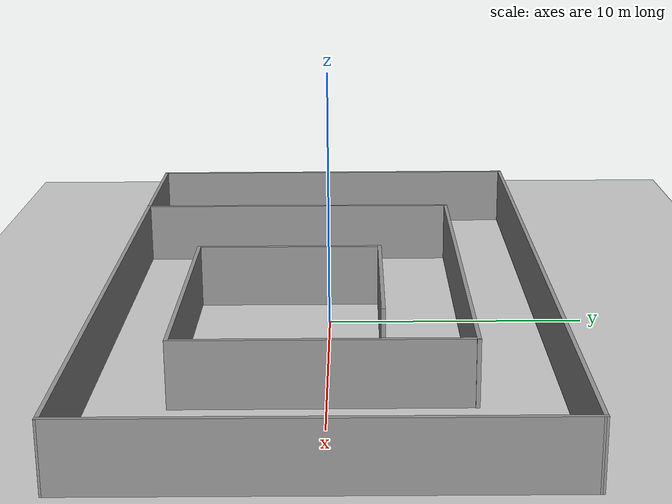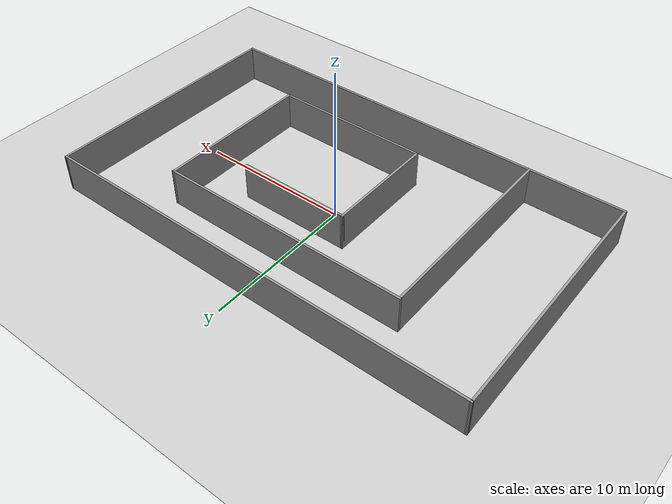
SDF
<sdf version="1.7">
 <world name="default">
  <light name="sun" type="directional">
   <pose>0 0 10 0 -0 0</pose>
   <diffuse>0.8 0.8 0.8 1</diffuse>
   <specular>0.2 0.2 0.2 1</specular>
   <attenuation>
    <range>1000</range>
    <constant>0.9</constant>
    <linear>0.01</linear>
    <quadratic>0.001</quadratic>
   </attenuation>
   <direction>-0.5 0.1 -0.9</direction>
   <spot><inner_angle>0</inner_angle><outer_angle>0</outer_angle><falloff>0</falloff></spot>
  </light>
  <model name="ground_plane">
   <static>1</static>
   <link name="link">
    <collision name="collision">
     <geometry><plane><normal>0 0 1</normal><size>100 100</size></plane></geometry>
     <surface>
      <contact><collide_bitmask>65535</collide_bitmask></contact>
      <friction><ode><mu>100</mu><mu2>50</mu2></ode></friction>
     </surface>
    </collision>
    <visual name="visual">
     <cast_shadows>0</cast_shadows>
     <geometry><plane><normal>0 0 1</normal><size>100 100</size></plane></geometry>
     <material>
      <script><uri>file://media/materials/scripts/gazebo.material</uri><name>Gazebo/Grey</name></script>
     </material>
    </visual>
   </link>
  </model>
  <gravity>0 0 -9.8</gravity>
  <magnetic_field>6e-06 2.3e-05 -4.2e-05</magnetic_field>
  <atmosphere type="adiabatic"/>
  <physics type="ode">
   <max_step_size>0.001</max_step_size>
   <real_time_factor>1</real_time_factor>
   <real_time_update_rate>1000</real_time_update_rate>
  </physics>
  <scene><ambient>0.4 0.4 0.4 1</ambient><background>0.7 0.7 0.7 1</background><shadows>1</shadows></scene>
  <spherical_coordinates>
   <surface_model>EARTH_WGS84</surface_model>
   <latitude_deg>0</latitude_deg>
   <longitude_deg>0</longitude_deg>
   <elevation>0</elevation>
   <heading_deg>0</heading_deg>
  </spherical_coordinates>
  <model name="actor30_collision">
   <pose>-13 6.9001 -4.50699 0 -0 1.5708</pose>
   <link name="body">
    <pose>0 0 0.85 0 -0 0</pose>
    <visual name="visual">
     <geometry><cylinder><radius>0.15</radius><length>1.7</length></cylinder></geometry>
     <transparency>1</transparency>
     <cast_shadows>0</cast_shadows>
    </visual>
    <collision name="collision">
     <geometry><cylinder><radius>0.15</radius><length>1.7</length></cylinder></geometry>
     <surface>
      <friction>
       <ode><mu>1</mu><mu2>1</mu2><fdir1>0 0 0</fdir1><slip1>0</slip1><slip2>0</slip2></ode>
       <torsional>
        <coefficient>1</coefficient>
        <patch_radius>0</patch_radius>
        <surface_radius>0</surface_radius>
        <use_patch_radius>1</use_patch_radius>
        <ode><slip>0</slip></ode>
       </torsional>
      </friction>
      <bounce><restitution_coefficient>0</restitution_coefficient><threshold>1e+06</threshold></bounce>
      <contact>
       <collide_without_contact>0</collide_without_contact>
       <collide_without_contact_bitmask>1</collide_without_contact_bitmask>
       <collide_bitmask>1</collide_bitmask>
       <ode>
        <soft_cfm>0</soft_cfm>
        <soft_erp>0.2</soft_erp>
        <kp>1e+13</kp>
        <kd>1</kd>
        <max_vel>0.01</max_vel>
        <min_depth>0</min_depth>
       </ode>
       <bullet>
        <split_impulse>1</split_impulse>
        <split_impulse_penetration_threshold>-0.01</split_impulse_penetration_threshold>
        <soft_cfm>0</soft_cfm>
        <soft_erp>0.2</soft_erp>
        <kp>1e+13</kp>
        <kd>1</kd>
       </bullet>
      </contact>
     </surface>
    </collision>
    <inertial>
     <inertia><ixx>1</ixx><ixy>0</ixy><ixz>0</ixz><iyy>1</iyy><iyz>0</iyz><izz>1</izz></inertia>
     <mass>1</mass>
    </inertial>
   </link>
   <static>0</static>
   <plugin name="actor30_collision_follower" filename="libgazebo_actor_pose_follower.so">
    <target>actor30</target>
    <offset>0 0 0 0 0 0</offset>
   </plugin>
  </model>
  <model name="actor31_collision">
   <pose>-10 5.9001 -4.50698 0 -0 1.5708</pose>
   <link name="body">
    <pose>0 0 0.85 0 -0 0</pose>
    <visual name="visual">
     <geometry><cylinder><radius>0.15</radius><length>1.7</length></cylinder></geometry>
     <transparency>1</transparency>
     <cast_shadows>0</cast_shadows>
    </visual>
    <collision name="collision">
     <geometry><cylinder><radius>0.15</radius><length>1.7</length></cylinder></geometry>
     <surface>
      <friction>
       <ode><mu>1</mu><mu2>1</mu2><fdir1>0 0 0</fdir1><slip1>0</slip1><slip2>0</slip2></ode>
       <torsional>
        <coefficient>1</coefficient>
        <patch_radius>0</patch_radius>
        <surface_radius>0</surface_radius>
        <use_patch_radius>1</use_patch_radius>
        <ode><slip>0</slip></ode>
       </torsional>
      </friction>
      <bounce><restitution_coefficient>0</restitution_coefficient><threshold>1e+06</threshold></bounce>
      <contact>
       <collide_without_contact>0</collide_without_contact>
       <collide_without_contact_bitmask>1</collide_without_contact_bitmask>
       <collide_bitmask>1</collide_bitmask>
       <ode>
        <soft_cfm>0</soft_cfm>
        <soft_erp>0.2</soft_erp>
        <kp>1e+13</kp>
        <kd>1</kd>
        <max_vel>0.01</max_vel>
        <min_depth>0</min_depth>
       </ode>
       <bullet>
        <split_impulse>1</split_impulse>
        <split_impulse_penetration_threshold>-0.01</split_impulse_penetration_threshold>
        <soft_cfm>0</soft_cfm>
        <soft_erp>0.2</soft_erp>
        <kp>1e+13</kp>
        <kd>1</kd>
       </bullet>
      </contact>
     </surface>
    </collision>
    <inertial>
     <inertia><ixx>1</ixx><ixy>0</ixy><ixz>0</ixz><iyy>1</iyy><iyz>0</iyz><izz>1</izz></inertia>
     <mass>1</mass>
    </inertial>
   </link>
   <static>0</static>
   <plugin name="actor31_collision_follower" filename="libgazebo_actor_pose_follower.so">
    <target>actor31</target>
    <offset>0 0 0 0 0 0</offset>
   </plugin>
  </model>
  <model name="actor32_collision">
   <pose>9.9001 6 -4.50696 0 -0 0</pose>
   <link name="body">
    <pose>0 0 0.85 0 -0 0</pose>
    <visual name="visual">
     <geometry><cylinder><radius>0.15</radius><length>1.7</length></cylinder></geometry>
     <transparency>1</transparency>
     <cast_shadows>0</cast_shadows>
    </visual>
    <collision name="collision">
     <geometry><cylinder><radius>0.15</radius><length>1.7</length></cylinder></geometry>
     <surface>
      <friction>
       <ode><mu>1</mu><mu2>1</mu2><fdir1>0 0 0</fdir1><slip1>0</slip1><slip2>0</slip2></ode>
       <torsional>
        <coefficient>1</coefficient>
        <patch_radius>0</patch_radius>
        <surface_radius>0</surface_radius>
        <use_patch_radius>1</use_patch_radius>
        <ode><slip>0</slip></ode>
       </torsional>
      </friction>
      <bounce><restitution_coefficient>0</restitution_coefficient><threshold>1e+06</threshold></bounce>
      <contact>
       <collide_without_contact>0</collide_without_contact>
       <collide_without_contact_bitmask>1</collide_without_contact_bitmask>
       <collide_bitmask>1</collide_bitmask>
       <ode>
        <soft_cfm>0</soft_cfm>
        <soft_erp>0.2</soft_erp>
        <kp>1e+13</kp>
        <kd>1</kd>
        <max_vel>0.01</max_vel>
        <min_depth>0</min_depth>
       </ode>
       <bullet>
        <split_impulse>1</split_impulse>
        <split_impulse_penetration_threshold>-0.01</split_impulse_penetration_threshold>
        <soft_cfm>0</soft_cfm>
        <soft_erp>0.2</soft_erp>
        <kp>1e+13</kp>
        <kd>1</kd>
       </bullet>
      </contact>
     </surface>
    </collision>
    <inertial>
     <inertia><ixx>1</ixx><ixy>0</ixy><ixz>0</ixz><iyy>1</iyy><iyz>0</iyz><izz>1</izz></inertia>
     <mass>1</mass>
    </inertial>
   </link>
   <static>0</static>
   <plugin name="actor32_collision_follower" filename="libgazebo_actor_pose_follower.so">
    <target>actor32</target>
    <offset>0 0 0 0 0 0</offset>
   </plugin>
  </model>
  <model name="actor33_collision">
   <pose>7.9002 7.5 -4.50695 0 -0 0</pose>
   <link name="body">
    <pose>0 0 0.85 0 -0 0</pose>
    <visual name="visual">
     <geometry><cylinder><radius>0.15</radius><length>1.7</length></cylinder></geometry>
     <transparency>1</transparency>
     <cast_shadows>0</cast_shadows>
    </visual>
    <collision name="collision">
     <geometry><cylinder><radius>0.15</radius><length>1.7</length></cylinder></geometry>
     <surface>
      <friction>
       <ode><mu>1</mu><mu2>1</mu2><fdir1>0 0 0</fdir1><slip1>0</slip1><slip2>0</slip2></ode>
       <torsional>
        <coefficient>1</coefficient>
        <patch_radius>0</patch_radius>
        <surface_radius>0</surface_radius>
        <use_patch_radius>1</use_patch_radius>
        <ode><slip>0</slip></ode>
       </torsional>
      </friction>
      <bounce><restitution_coefficient>0</restitution_coefficient><threshold>1e+06</threshold></bounce>
      <contact>
       <collide_without_contact>0</collide_without_contact>
       <collide_without_contact_bitmask>1</collide_without_contact_bitmask>
       <collide_bitmask>1</collide_bitmask>
       <ode>
        <soft_cfm>0</soft_cfm>
        <soft_erp>0.2</soft_erp>
        <kp>1e+13</kp>
        <kd>1</kd>
        <max_vel>0.01</max_vel>
        <min_depth>0</min_depth>
       </ode>
       <bullet>
        <split_impulse>1</split_impulse>
        <split_impulse_penetration_threshold>-0.01</split_impulse_penetration_threshold>
        <soft_cfm>0</soft_cfm>
        <soft_erp>0.2</soft_erp>
        <kp>1e+13</kp>
        <kd>1</kd>
       </bullet>
      </contact>
     </surface>
    </collision>
    <inertial>
     <inertia><ixx>1</ixx><ixy>0</ixy><ixz>0</ixz><iyy>1</iyy><iyz>0</iyz><izz>1</izz></inertia>
     <mass>1</mass>
    </inertial>
   </link>
   <static>0</static>
   <plugin name="actor33_collision_follower" filename="libgazebo_actor_pose_follower.so">
    <target>actor33</target>
    <offset>0 0 0 0 0 0</offset>
   </plugin>
  </model>
  <model name="ICR2026_wall">
   <link name="Wall_0">
    <collision name="Wall_0_Collision">
     <geometry><box><size>7.5 0.15 2.5</size></box></geometry>
     <pose>0 0 1.25 0 -0 0</pose>
    </collision>
    <visual name="Wall_0_Visual">
     <pose>0 0 1.25 0 -0 0</pose>
     <geometry><box><size>7.5 0.15 2.5</size></box></geometry>
     <material>
      <script><uri>file://media/materials/scripts/gazebo.material</uri><name>Gazebo/Grey</name></script>
      <ambient>1 1 1 1</ambient>
     </material>
     <meta><layer>0</layer></meta>
    </visual>
    <pose>1.58092 2.01108 0 0 -0 3.13889</pose>
   </link>
   <link name="Wall_1">
    <collision name="Wall_1_Collision">
     <geometry><box><size>7.5 0.15 2.5</size></box></geometry>
     <pose>0 0 1.25 0 -0 0</pose>
    </collision>
    <visual name="Wall_1_Visual">
     <pose>0 0 1.25 0 -0 0</pose>
     <geometry><box><size>7.5 0.15 2.5</size></box></geometry>
     <material>
      <script><uri>file://media/materials/scripts/gazebo.material</uri><name>Gazebo/Grey</name></script>
      <ambient>1 1 1 1</ambient>
     </material>
     <meta><layer>0</layer></meta>
    </visual>
    <pose>-2.09423 -1.65397 0 0 -0 -1.5708</pose>
   </link>
   <link name="Wall_10">
    <collision name="Wall_10_Collision">
     <geometry><box><size>6.25 0.15 2.5</size></box></geometry>
     <pose>0 0 1.25 0 -0 0</pose>
    </collision>
    <visual name="Wall_10_Visual">
     <pose>0 0 1.25 0 -0 0</pose>
     <geometry><box><size>6.25 0.15 2.5</size></box></geometry>
     <material>
      <script><uri>file://media/materials/scripts/gazebo.material</uri><name>Gazebo/Grey</name></script>
      <ambient>1 1 1 1</ambient>
     </material>
     <meta><layer>0</layer></meta>
    </visual>
    <pose>-11.3058 -8.25297 0 0 -0 0</pose>
   </link>
   <link name="Wall_2">
    <collision name="Wall_2_Collision">
     <geometry><box><size>10.5 0.15 2.5</size></box></geometry>
     <pose>0 0 1.25 0 -0 0</pose>
    </collision>
    <visual name="Wall_2_Visual">
     <pose>0 0 1.25 0 -0 0</pose>
     <geometry><box><size>10.5 0.15 2.5</size></box></geometry>
     <material>
      <script><uri>file://media/materials/scripts/gazebo.material</uri><name>Gazebo/Grey</name></script>
      <ambient>1 1 1 1</ambient>
     </material>
     <meta><layer>0</layer></meta>
    </visual>
    <pose>3.08077 -5.32897 0 0 -0 0</pose>
   </link>
   <link name="Wall_3">
    <collision name="Wall_3_Collision">
     <geometry><box><size>10.6166 0.15 2.5</size></box></geometry>
     <pose>0 0 1.25 0 -0 0</pose>
    </collision>
    <visual name="Wall_3_Visual">
     <pose>0 0 1.25 0 -0 0</pose>
     <geometry><box><size>10.6166 0.15 2.5</size></box></geometry>
     <material>
      <script><uri>file://media/materials/scripts/gazebo.material</uri><name>Gazebo/Grey</name></script>
      <ambient>1 1 1 1</ambient>
     </material>
     <meta><layer>0</layer></meta>
    </visual>
    <pose>8.25592 -0.095743 0 0 -0 1.57077</pose>
   </link>
   <link name="Wall_4">
    <collision name="Wall_4_Collision">
     <geometry><box><size>16.6925 0.15 2.5</size></box></geometry>
     <pose>0 0 1.25 0 -0 0</pose>
    </collision>
    <visual name="Wall_4_Visual">
     <pose>0 0 1.25 0 -0 0</pose>
     <geometry><box><size>16.6925 0.15 2.5</size></box></geometry>
     <material>
      <script><uri>file://media/materials/scripts/gazebo.material</uri><name>Gazebo/Grey</name></script>
      <ambient>1 1 1 1</ambient>
     </material>
     <meta><layer>0</layer></meta>
    </visual>
    <pose>0.015448 5.13749 0 0 -0 3.14159</pose>
   </link>
   <link name="Wall_5">
    <collision name="Wall_5_Collision">
     <geometry><box><size>13.5 0.15 2.5</size></box></geometry>
     <pose>0 0 1.25 0 -0 0</pose>
    </collision>
    <visual name="Wall_5_Visual">
     <pose>0 0 1.25 0 -0 0</pose>
     <geometry><box><size>13.5 0.15 2.5</size></box></geometry>
     <material>
      <script><uri>file://media/materials/scripts/gazebo.material</uri><name>Gazebo/Grey</name></script>
      <ambient>1 1 1 1</ambient>
     </material>
     <meta><layer>0</layer></meta>
    </visual>
    <pose>-8.25576 -1.57797 0 0 -0 -1.5708</pose>
   </link>
   <link name="Wall_6">
    <collision name="Wall_6_Collision">
     <geometry><box><size>22.75 0.15 2.5</size></box></geometry>
     <pose>0 0 1.25 0 -0 0</pose>
    </collision>
    <visual name="Wall_6_Visual">
     <pose>0 0 1.25 0 -0 0</pose>
     <geometry><box><size>22.75 0.15 2.5</size></box></geometry>
     <material>
      <script><uri>file://media/materials/scripts/gazebo.material</uri><name>Gazebo/Grey</name></script>
      <ambient>1 1 1 1</ambient>
     </material>
     <meta><layer>0</layer></meta>
    </visual>
    <pose>3.04424 -8.25297 0 0 -0 0</pose>
   </link>
   <link name="Wall_7">
    <collision name="Wall_7_Collision">
     <geometry><box><size>16.6562 0.15 2.5</size></box></geometry>
     <pose>0 0 1.25 0 -0 0</pose>
    </collision>
    <visual name="Wall_7_Visual">
     <pose>0 0 1.25 0 -0 0</pose>
     <geometry><box><size>16.6562 0.15 2.5</size></box></geometry>
     <material>
      <script><uri>file://media/materials/scripts/gazebo.material</uri><name>Gazebo/Grey</name></script>
      <ambient>1 1 1 1</ambient>
     </material>
     <meta><layer>0</layer></meta>
    </visual>
    <pose>14.3911 -0 0 0 -0 1.56512</pose>
   </link>
   <link name="Wall_8">
    <collision name="Wall_8_Collision">
     <geometry><box><size>29.0259 0.15 2.5</size></box></geometry>
     <pose>0 0 1.25 0 -0 0</pose>
    </collision>
    <visual name="Wall_8_Visual">
     <pose>0 0 1.25 0 -0 0</pose>
     <geometry><box><size>29.0259 0.15 2.5</size></box></geometry>
     <material>
      <script><uri>file://media/materials/scripts/gazebo.material</uri><name>Gazebo/Grey</name></script>
      <ambient>1 1 1 1</ambient>
     </material>
     <meta><layer>0</layer></meta>
    </visual>
    <pose>-2.6e-05 8.25297 0 0 -0 3.14159</pose>
   </link>
   <link name="Wall_9">
    <collision name="Wall_9_Collision">
     <geometry><box><size>16.6561 0.15 2.5</size></box></geometry>
     <pose>0 0 1.25 0 -0 0</pose>
    </collision>
    <visual name="Wall_9_Visual">
     <pose>0 0 1.25 0 -0 0</pose>
     <geometry><box><size>16.6561 0.15 2.5</size></box></geometry>
     <material>
      <script><uri>file://media/materials/scripts/gazebo.material</uri><name>Gazebo/Grey</name></script>
      <ambient>1 1 1 1</ambient>
     </material>
     <meta><layer>0</layer></meta>
    </visual>
    <pose>-14.3969 -0 0 0 -0 -1.56581</pose>
   </link>
   <static>1</static>
  </model>
 </world>
</sdf>
